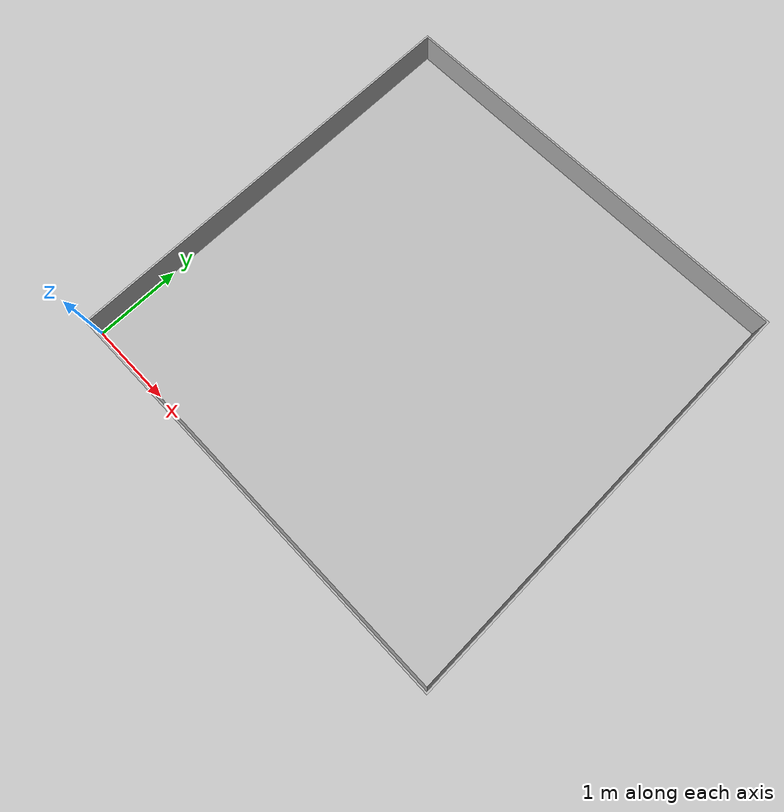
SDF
<?xml version='1.0' encoding='utf-8'?>
<sdf version="1.4">
<model name="template_model">
<link name="track">
<collision name="collision">
<pose>0 0 0 0 0 0</pose>
<geometry>
<mesh>
<uri>model://meshes/test/test_collision.dae</uri>
</mesh>
</geometry>
</collision>
<visual name="visual">
<pose>0 0 0 0 0 0</pose>
<geometry>
<mesh>
<uri>model://meshes/test/test.dae</uri>
</mesh>
</geometry>
</visual>
<visual name="wall">
<pose>0 0 0 0 0 0</pose>
<geometry>
<mesh>
<uri>model://meshes/test/wall.dae</uri>
</mesh>
</geometry>
</visual>
<collision name="wall_collision">
<pose>0 0 0 0 0 0</pose>
<geometry>
<mesh>
<uri>model://meshes/test/wall.dae</uri>
</mesh>
</geometry>
</collision>
</link>
<static>1</static>
</model>
</sdf>
